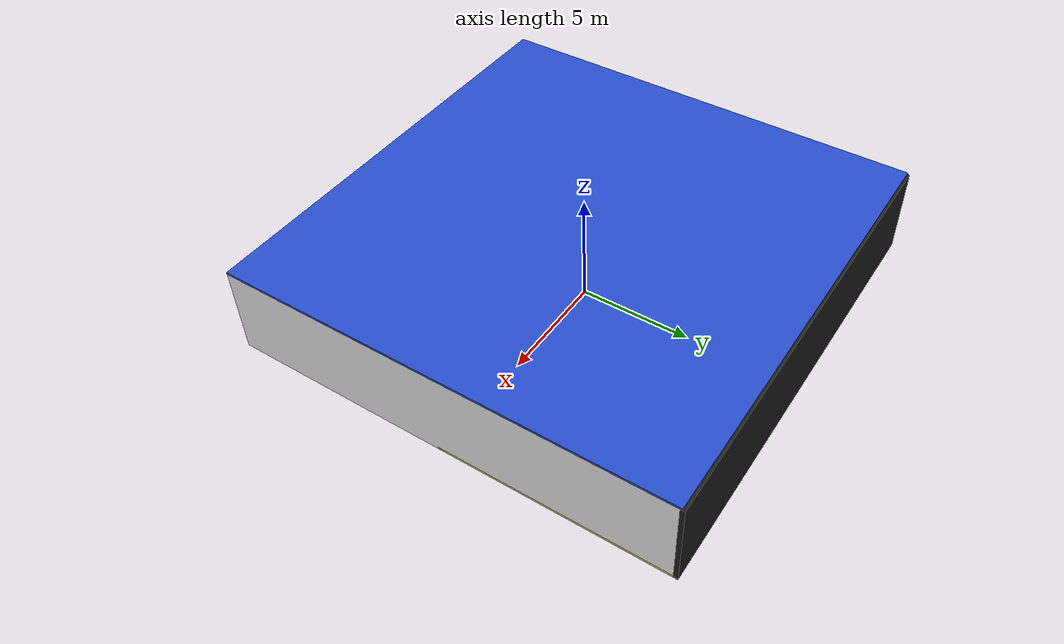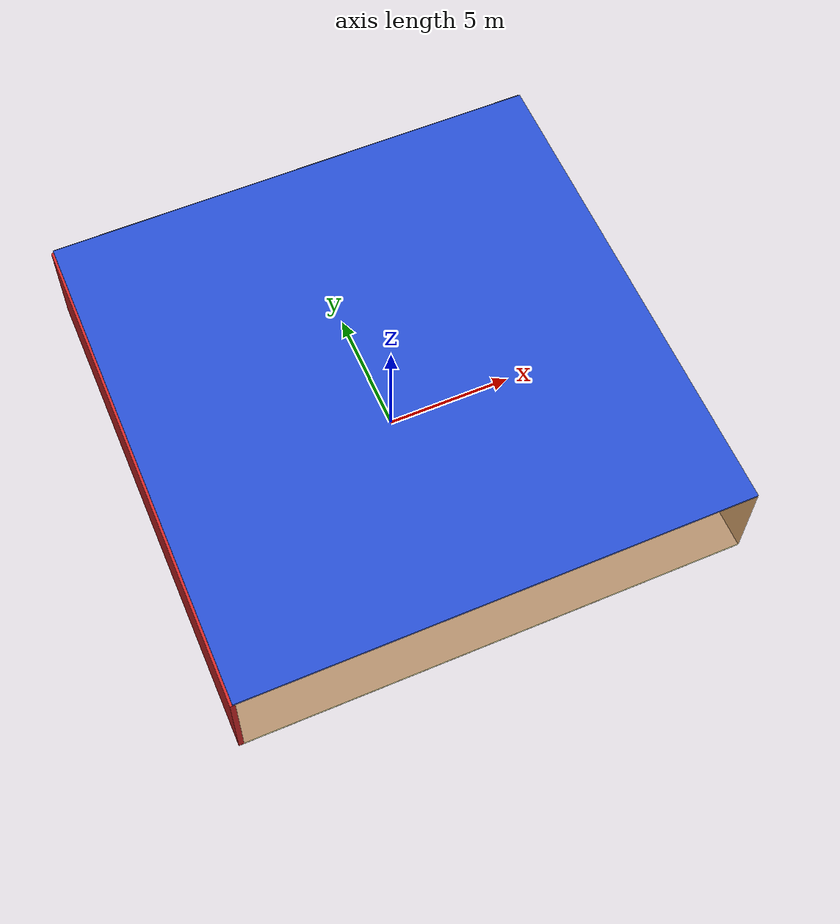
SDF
<sdf version="1.4">
 <world name="default">
  <physics type="ode">
   <max_step_size>0.001</max_step_size>
   <real_time_factor>1</real_time_factor>
   <real_time_update_rate>1000</real_time_update_rate>
   <gravity>0 0 -9.8</gravity>
  </physics>
  <scene><ambient>0.4 0.4 0.4 1</ambient><background>0.7 0.7 0.7 1</background><shadows>1</shadows></scene>
  <model name="Surrounding">
   <static>1</static>
   <link name="Ceiling">
    <collision name="Ceiling_Collision"><geometry><box><size>20 20 0.1</size></box></geometry></collision>
    <visual name="Ceiling_Visual">
     <geometry><box><size>20 20 0.1</size></box></geometry>
     <material>
      <script><uri>file://media/materials/scripts/gazebo.material</uri><name>Gazebo/BlueGlow</name></script>
     </material>
    </visual>
    <pose>0 0 4.05 0 0 0</pose>
   </link>
   <link name="Wall_South">
    <collision name="Wall_South_Collision">
     <geometry><box><size>20 0 4</size></box></geometry>
     <pose>0 0 2 0 -0 0</pose>
    </collision>
    <visual name="Wall_South_Visual">
     <pose>0 0 2 0 -0 0</pose>
     <geometry><box><size>20 0 4</size></box></geometry>
     <material>
      <script>
       <uri>file://media/materials/scripts/gazebo.material</uri>
       <name>Gazebo/OrangeTransparent</name>
      </script>
     </material>
    </visual>
    <velocity_decay><linear>0</linear><angular>0</angular></velocity_decay>
    <pose>0 -10 0 0 -0 0</pose>
   </link>
   <link name="Wall_East">
    <collision name="Wall_21_Collision">
     <geometry><box><size>20 0 4</size></box></geometry>
     <pose>0 0 2 0 -0 0</pose>
    </collision>
    <visual name="Wall_21_Visual">
     <pose>0 0 2 0 -0 0</pose>
     <geometry><box><size>20 0 4</size></box></geometry>
     <material>
      <script><uri>file://media/materials/scripts/gazebo.material</uri><name>Gazebo/WhiteGlow</name></script>
     </material>
    </visual>
    <velocity_decay><linear>0</linear><angular>0</angular></velocity_decay>
    <pose>10 0 0 0 -0 1.5708</pose>
   </link>
   <link name="Wall_North">
    <collision name="Wall_22_Collision">
     <geometry><box><size>20 0.2 4</size></box></geometry>
     <pose>0 0 2 0 -0 0</pose>
    </collision>
    <visual name="Wall_22_Visual">
     <pose>0 0 2 0 -0 0</pose>
     <geometry><box><size>20 0.2 4</size></box></geometry>
     <material>
      <script><uri>file://media/materials/scripts/gazebo.material</uri><name>Gazebo/Black</name></script>
     </material>
    </visual>
    <velocity_decay><linear>0</linear><angular>0</angular></velocity_decay>
    <pose>0 10 0 0 -0 0</pose>
   </link>
   <link name="Wall_West">
    <collision name="Wall_23_Collision">
     <geometry><box><size>20 0.2 4</size></box></geometry>
     <pose>0 0 2 0 -0 0</pose>
    </collision>
    <visual name="Wall_23_Visual">
     <pose>0 0 2 0 -0 0</pose>
     <geometry><box><size>20 0.2 4</size></box></geometry>
     <material>
      <script><uri>file://media/materials/scripts/gazebo.material</uri><name>Gazebo/Red</name></script>
     </material>
    </visual>
    <velocity_decay><linear>0</linear><angular>0</angular></velocity_decay>
    <pose>-10 0 0 0 0 -1.5708</pose>
   </link>
   <link name="Ground_link">
    <collision name="collision">
     <pose>0 0 .05 0 -0 0</pose>
     <geometry><box><size>20 20 0.1</size></box></geometry>
    </collision>
    <visual name="visual">
     <pose>0 0 .05 0 -0 0</pose>
     <geometry><box><size>20 20 0.1</size></box></geometry>
     <material>
      <script>
       <uri>file://media/materials/scripts/gazebo.material</uri>
       <name>Gazebo/YellowTransparent</name>
      </script>
     </material>
    </visual>
   </link>
   <static>1</static>
  </model>
  <spherical_coordinates>
   <surface_model>EARTH_WGS84</surface_model>
   <latitude_deg>0</latitude_deg>
   <longitude_deg>0</longitude_deg>
   <elevation>0</elevation>
   <heading_deg>0</heading_deg>
  </spherical_coordinates>
  <light name="lightball_0" type="diffuse">
   <diffuse>0.8 0.8 0.8 1</diffuse>
   <specular>0.2 0.2 0.2 1</specular>
   <attenuation>
    <range>100</range>
    <constant>0.7</constant>
    <linear>0.01</linear>
    <quadratic>0.001</quadratic>
   </attenuation>
   <direction>-0.5 0.1 -0.9</direction>
   <pose>-1.12359675509 9.63334989865 1.3838215215 0 0 0</pose>
  </light>
  <light name="lightball_1" type="diffuse">
   <diffuse>0.8 0.8 0.8 1</diffuse>
   <specular>0.2 0.2 0.2 1</specular>
   <attenuation>
    <range>100</range>
    <constant>0.7</constant>
    <linear>0.01</linear>
    <quadratic>0.001</quadratic>
   </attenuation>
   <direction>-0.5 0.1 -0.9</direction>
   <pose>6.18980891826 -4.59587985481 1.77857279586 0 0 0</pose>
  </light>
  <light name="lightball_2" type="diffuse">
   <diffuse>0.8 0.8 0.8 1</diffuse>
   <specular>0.2 0.2 0.2 1</specular>
   <attenuation>
    <range>100</range>
    <constant>0.7</constant>
    <linear>0.01</linear>
    <quadratic>0.001</quadratic>
   </attenuation>
   <direction>-0.5 0.1 -0.9</direction>
   <pose>6.74735787878 -0.951499940414 2.77593840836 0 0 0</pose>
  </light>
  <light name="lightball_3" type="diffuse">
   <diffuse>0.8 0.8 0.8 1</diffuse>
   <specular>0.2 0.2 0.2 1</specular>
   <attenuation>
    <range>100</range>
    <constant>0.7</constant>
    <linear>0.01</linear>
    <quadratic>0.001</quadratic>
   </attenuation>
   <direction>-0.5 0.1 -0.9</direction>
   <pose>-9.49010291634 9.63544495177 1.03086776265 0 0 0</pose>
  </light>
  <light name="lightball_4" type="diffuse">
   <diffuse>0.8 0.8 0.8 1</diffuse>
   <specular>0.2 0.2 0.2 1</specular>
   <attenuation>
    <range>100</range>
    <constant>0.7</constant>
    <linear>0.01</linear>
    <quadratic>0.001</quadratic>
   </attenuation>
   <direction>-0.5 0.1 -0.9</direction>
   <pose>4.97846564713 6.01788940203 2.06011370767 0 0 0</pose>
  </light>
  <light name="lightball_5" type="diffuse">
   <diffuse>0.8 0.8 0.8 1</diffuse>
   <specular>0.2 0.2 0.2 1</specular>
   <attenuation>
    <range>100</range>
    <constant>0.7</constant>
    <linear>0.01</linear>
    <quadratic>0.001</quadratic>
   </attenuation>
   <direction>-0.5 0.1 -0.9</direction>
   <pose>8.13159443765 -9.74895057101 2.20984019659 0 0 0</pose>
  </light>
  <light name="lightball_6" type="diffuse">
   <diffuse>0.8 0.8 0.8 1</diffuse>
   <specular>0.2 0.2 0.2 1</specular>
   <attenuation>
    <range>100</range>
    <constant>0.7</constant>
    <linear>0.01</linear>
    <quadratic>0.001</quadratic>
   </attenuation>
   <direction>-0.5 0.1 -0.9</direction>
   <pose>-9.59202996163 4.55619431731 3.75866474931 0 0 0</pose>
  </light>
  <light name="lightball_7" type="diffuse">
   <diffuse>0.8 0.8 0.8 1</diffuse>
   <specular>0.2 0.2 0.2 1</specular>
   <attenuation>
    <range>100</range>
    <constant>0.7</constant>
    <linear>0.01</linear>
    <quadratic>0.001</quadratic>
   </attenuation>
   <direction>-0.5 0.1 -0.9</direction>
   <pose>-8.59997124518 0.59659923871 1.8673752293 0 0 0</pose>
  </light>
  <light name="lightball_8" type="diffuse">
   <diffuse>0.8 0.8 0.8 1</diffuse>
   <specular>0.2 0.2 0.2 1</specular>
   <attenuation>
    <range>100</range>
    <constant>0.7</constant>
    <linear>0.01</linear>
    <quadratic>0.001</quadratic>
   </attenuation>
   <direction>-0.5 0.1 -0.9</direction>
   <pose>4.04044741433 -7.46402961206 2.58419407877 0 0 0</pose>
  </light>
  <light name="lightball_9" type="diffuse">
   <diffuse>0.8 0.8 0.8 1</diffuse>
   <specular>0.2 0.2 0.2 1</specular>
   <attenuation>
    <range>100</range>
    <constant>0.7</constant>
    <linear>0.01</linear>
    <quadratic>0.001</quadratic>
   </attenuation>
   <direction>-0.5 0.1 -0.9</direction>
   <pose>5.44140637878 1.71431102361 2.04628198563 0 0 0</pose>
  </light>
  <light name="lightball_10" type="diffuse">
   <diffuse>0.8 0.8 0.8 1</diffuse>
   <specular>0.2 0.2 0.2 1</specular>
   <attenuation>
    <range>100</range>
    <constant>0.7</constant>
    <linear>0.01</linear>
    <quadratic>0.001</quadratic>
   </attenuation>
   <direction>-0.5 0.1 -0.9</direction>
   <pose>-5.79697223298 -3.72126108995 1.08864978093 0 0 0</pose>
  </light>
  <light name="lightball_11" type="diffuse">
   <diffuse>0.8 0.8 0.8 1</diffuse>
   <specular>0.2 0.2 0.2 1</specular>
   <attenuation>
    <range>100</range>
    <constant>0.7</constant>
    <linear>0.01</linear>
    <quadratic>0.001</quadratic>
   </attenuation>
   <direction>-0.5 0.1 -0.9</direction>
   <pose>-7.86524002241 8.01581731099 2.73514971557 0 0 0</pose>
  </light>
  <include>
   <uri>model://robocup_3Dsim_goal</uri>
   <pose>-6.80633370479 2.26000897496 0 0 0 3.04359546612</pose>
  </include>
 </world>
</sdf>

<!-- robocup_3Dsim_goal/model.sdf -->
<sdf version="1.5">
  <model name="robocup_3d_goal">
    <static>true</static>
    <link name="left_post">
      <pose>0 1.05 0.45 0 0 0</pose>
      <collision name="collision">
        <geometry>
          <cylinder>
            <radius>0.05</radius>
            <length>0.9</length>
          </cylinder>
        </geometry>
      </collision>
      <visual name="visual">
        <geometry>
          <cylinder>
            <radius>0.05</radius>
            <length>0.9</length>
          </cylinder>
        </geometry>
        <material>
          <script>
            <uri>file://media/materials/scripts/gazebo.material</uri>
            <name>Gazebo/ZincYellow</name>
          </script>
        </material>
      </visual>
    </link>
    <link name="left_support_horiz_lower">
      <pose>0.30 1.05 0.01 0 0 0</pose>
      <collision name="collision">
        <geometry>
          <box>
            <size>0.50 0.02 0.02</size>
          </box>
        </geometry>
      </collision>
      <visual name="visual">
        <geometry>
          <box>
            <size>0.50 0.02 0.02</size>
          </box>
        </geometry>
        <material>
          <script>
            <uri>file://media/materials/scripts/gazebo.material</uri>
            <name>Gazebo/White</name>
          </script>
        </material>
      </visual>
    </link>
    <link name="left_support_horiz_upper">
      <pose>0.30 1.05 0.79 0 0 0</pose>
      <collision name="collision">
        <geometry>
          <box>
            <size>0.50 0.02 0.02</size>
          </box>
        </geometry>
      </collision>
      <visual name="visual">
        <geometry>
          <box>
            <size>0.50 0.02 0.02</size>
          </box>
        </geometry>
        <material>
          <script>
            <uri>file://media/materials/scripts/gazebo.material</uri>
            <name>Gazebo/White</name>
          </script>
        </material>
      </visual>
    </link>
    <link name="left_support_vertical">
      <pose>0.56 1.05 0.4 0 1.5708 0</pose>
      <collision name="collision">
        <geometry>
          <box>
            <size>0.80 0.02 0.02</size>
          </box>
        </geometry>
      </collision>
      <visual name="visual">
        <geometry>
          <box>
            <size>0.80 0.02 0.02</size>
          </box>
        </geometry>
        <material>
          <script>
            <uri>file://media/materials/scripts/gazebo.material</uri>
            <name>Gazebo/White</name>
          </script>
        </material>
      </visual>
    </link>
    <link name="right_support_horiz_lower">
      <pose>0.30 -1.05 0.01 0 0 0</pose>
      <collision name="collision">
        <geometry>
          <box>
            <size>0.50 0.02 0.02</size>
          </box>
        </geometry>
      </collision>
      <visual name="visual">
        <geometry>
          <box>
            <size>0.50 0.02 0.02</size>
          </box>
        </geometry>
        <material>
          <script>
            <uri>file://media/materials/scripts/gazebo.material</uri>
            <name>Gazebo/White</name>
          </script>
        </material>
      </visual>
    </link>
    <link name="right_support_horiz_upper">
      <pose>0.30 -1.05 0.79 0 0 0</pose>
      <collision name="collision">
        <geometry>
          <box>
            <size>0.50 0.02 0.02</size>
          </box>
        </geometry>
      </collision>
      <visual name="visual">
        <geometry>
          <box>
            <size>0.50 0.02 0.02</size>
          </box>
        </geometry>
        <material>
          <script>
            <uri>file://media/materials/scripts/gazebo.material</uri>
            <name>Gazebo/White</name>
          </script>
        </material>
      </visual>
    </link>
    <link name="right_support_vertical">
      <pose>0.56 -1.05 0.4 0 1.5708 0</pose>
      <collision name="collision">
        <geometry>
          <box>
            <size>0.80 0.02 0.02</size>
          </box>
        </geometry>
      </collision>
      <visual name="visual">
        <geometry>
          <box>
            <size>0.80 0.02 0.02</size>
          </box>
        </geometry>
        <material>
          <script>
            <uri>file://media/materials/scripts/gazebo.material</uri>
            <name>Gazebo/White</name>
          </script>
        </material>
      </visual>
    </link>
    <link name="center_support_horiz_lower">
      <pose>0.56 0 0.01 0 1.5708 0</pose>
      <collision name="collision">
        <geometry>
          <box>
            <size>0.02 2.08 0.02</size>
          </box>
        </geometry>
      </collision>
      <visual name="visual">
        <geometry>
          <box>
            <size>0.02 2.08 0.02</size>
          </box>
        </geometry>
        <material>
          <script>
            <uri>file://media/materials/scripts/gazebo.material</uri>
            <name>Gazebo/White</name>
          </script>
        </material>
      </visual>
    </link>
    <link name="center_support_horiz_upper">
      <pose>0.56 0 0.79 0 1.5708 0</pose>
      <collision name="collision">
        <geometry>
          <box>
            <size>0.02 2.08 0.02</size>
          </box>
        </geometry>
      </collision>
      <visual name="visual">
        <geometry>
          <box>
            <size>0.02 2.08 0.02</size>
          </box>
        </geometry>
        <material>
          <script>
            <uri>file://media/materials/scripts/gazebo.material</uri>
            <name>Gazebo/White</name>
          </script>
        </material>
      </visual>
    </link>
    <link name="right_post">
      <pose>0 -1.05 0.45 0 0 0</pose>
      <collision name="collision">
        <geometry>
          <cylinder>
            <radius>0.05</radius>
            <length>0.9</length>
          </cylinder>
        </geometry>
      </collision>
      <visual name="visual">
        <geometry>
          <cylinder>
            <radius>0.05</radius>
            <length>0.9</length>
          </cylinder>
        </geometry>
        <material>
          <script>
            <uri>file://media/materials/scripts/gazebo.material</uri>
            <name>Gazebo/ZincYellow</name>
          </script>
        </material>
      </visual>
    </link>
    <link name="crossbar">
      <pose>0 0 0.85 1.57 1.57 0</pose>
      <collision name="collision">
        <geometry>
          <cylinder>
            <radius>0.05</radius>
            <length>2.0</length>
          </cylinder>
        </geometry>
      </collision>
      <visual name="visual">
        <geometry>
          <cylinder>
            <radius>0.05</radius>
            <length>2.0</length>
          </cylinder>
        </geometry>
        <material>
          <script>
            <uri>file://media/materials/scripts/gazebo.material</uri>
            <name>Gazebo/ZincYellow</name>
          </script>
        </material>
      </visual>
    </link>
    <link name="center_net">
      <pose>0.56 0 0.40 0 0 0</pose>
      <collision name="collision">
        <geometry>
          <box>
            <size>0.01 2.1 0.80</size>
          </box>
        </geometry>
      </collision>
      <visual name="visual">
        <geometry>
          <box>
            <size>0.01 2.1 0.80</size>
          </box>
        </geometry>
        <material>
          <script>
            <uri>model://../model_source/models/robocup09_spl_field/materials/scripts/</uri>
            <uri>model://../model_source/models/robocup09_spl_field/materials/textures/</uri>
            <name>RoboCup/Net</name>
          </script>
        </material>
      </visual>
    </link>
    <link name="left_net">
      <pose>0.30 1.05 0.40 0 0 0</pose>
      <collision name="collision">
        <geometry>
          <box>
            <size>0.50 0.01 0.76</size>
          </box>
        </geometry>
      </collision>
      <visual name="visual">
        <geometry>
          <box>
            <size>0.50 0.01 0.76</size>
          </box>
        </geometry>
        <material>
          <script>
            <uri>model://../model_source/models/robocup09_spl_field/materials/scripts/</uri>
            <uri>model://../model_source/models/robocup09_spl_field/materials/textures/</uri>
            <name>RoboCup/Net</name>
          </script>
        </material>
      </visual>
    </link>
    <link name="right_net">
      <pose>0.30 -1.05 0.40 0 0 0</pose>
      <collision name="collision">
        <geometry>
          <box>
            <size>0.50 0.01 0.76</size>
          </box>
        </geometry>
      </collision>
      <visual name="visual">
        <geometry>
          <box>
            <size>0.50 0.01 0.76</size>
          </box>
        </geometry>
        <material>
          <script>
            <uri>model://../model_source/models/robocup09_spl_field/materials/scripts/</uri>
            <uri>model://../model_source/models/robocup09_spl_field/materials/textures/</uri>
            <name>RoboCup/Net</name>
          </script>
        </material>
      </visual>
    </link>
  </model>
</sdf>
